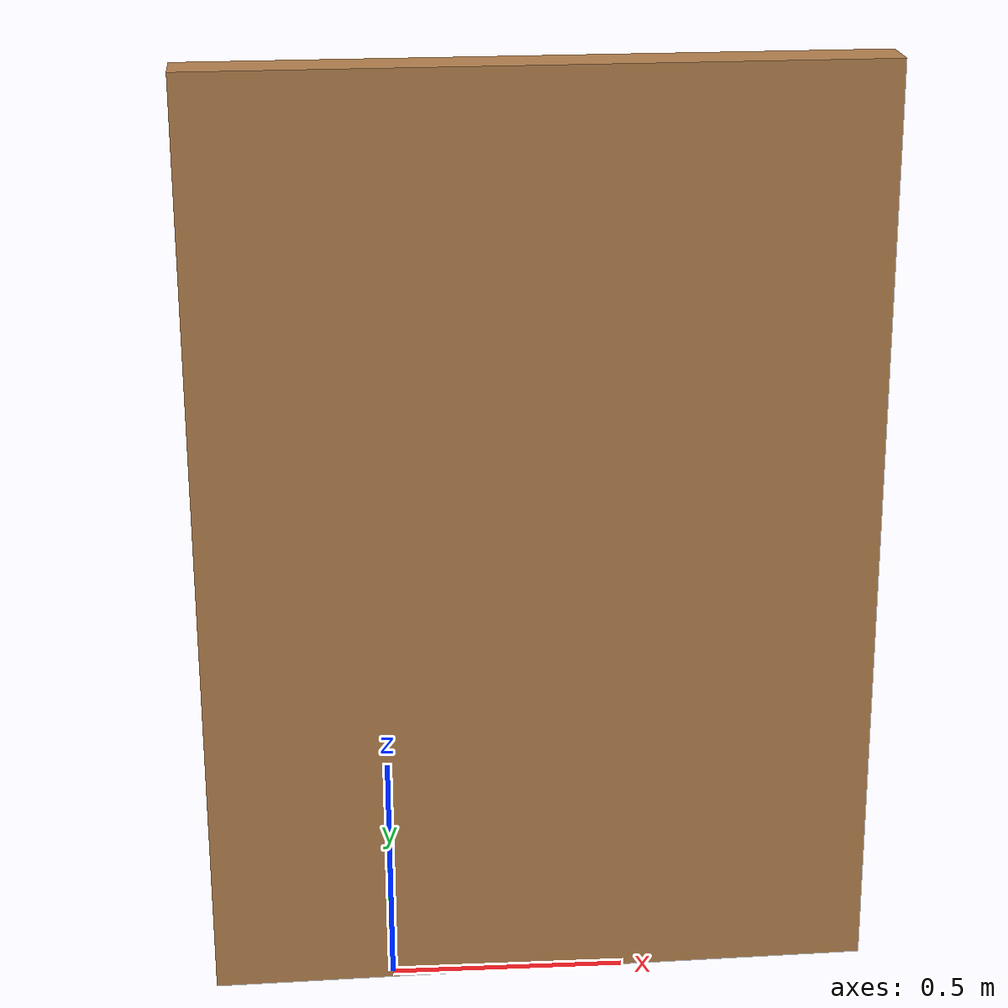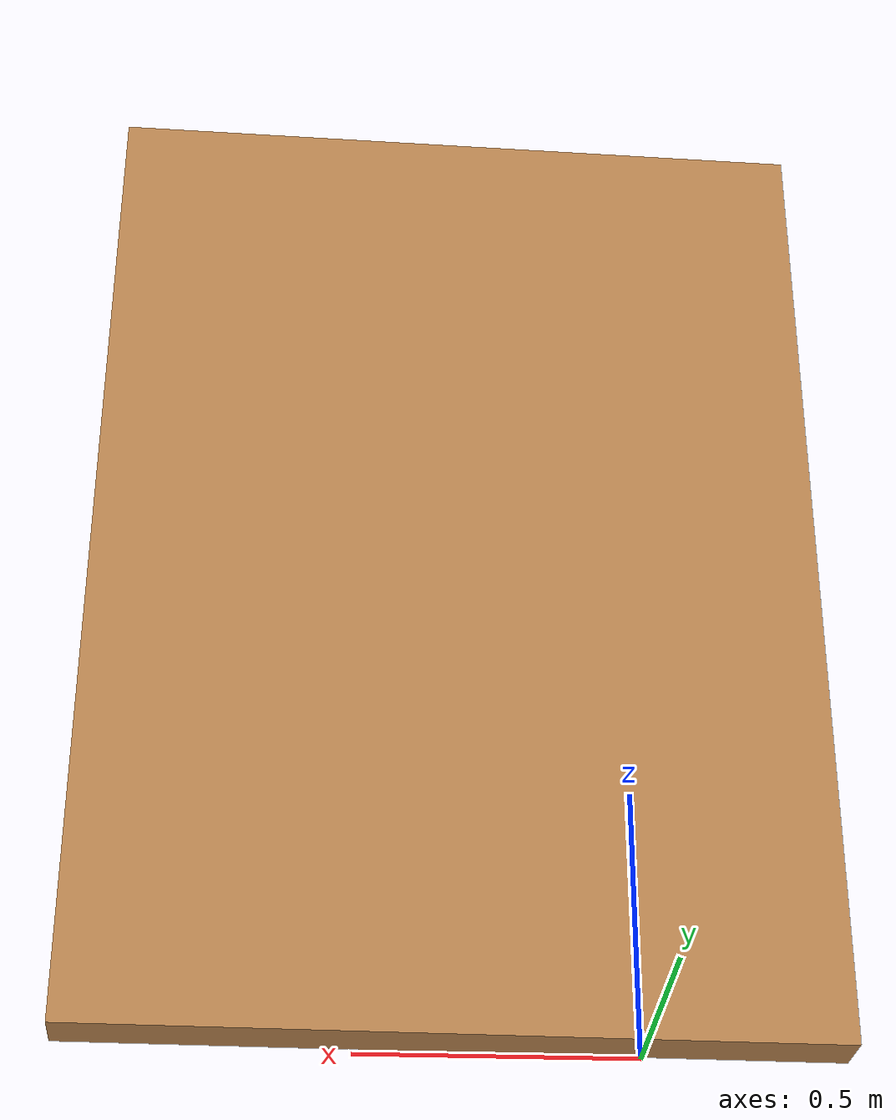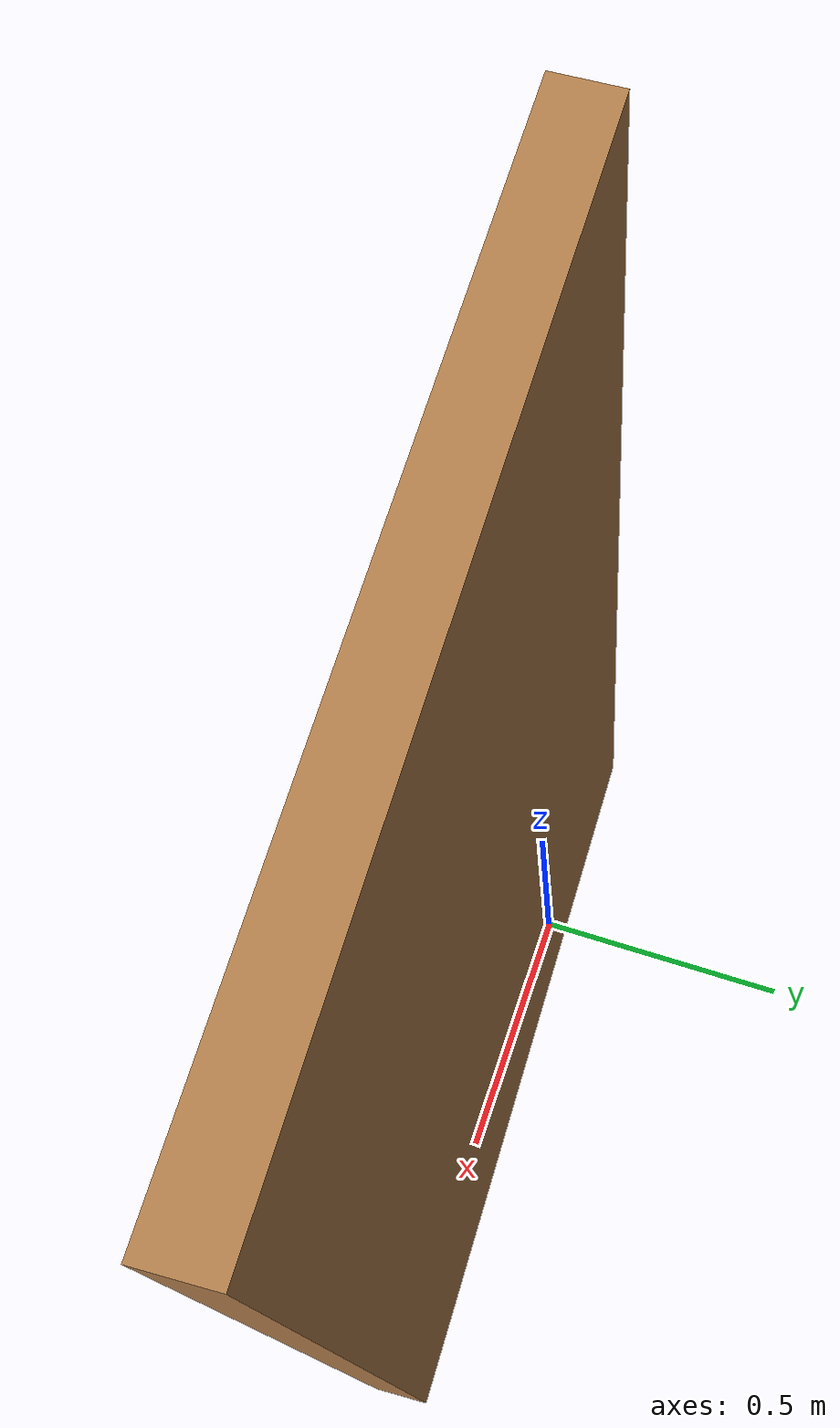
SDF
<?xml version='1.0'?>
<sdf version='1.6'>
  <model name='basic_ply_door_corrected_wider'>
    <link name='link'>
      <pose frame=''>0.319611 -0 1.00385 0 -0 0.034884</pose>
      <inertial>
        <mass>0.5167</mass>
        <inertia>
          <ixx>0.00086117</ixx>
          <ixy>0</ixy>
          <ixz>0</ixz>
          <iyy>0.00086117</iyy>
          <iyz>0</iyz>
          <izz>0.00086117</izz>
        </inertia>
        <pose frame=''>0 0 0 0 -0 0</pose>
      </inertial>
      <self_collide>0</self_collide>
      <enable_wind>0</enable_wind>
      <kinematic>0</kinematic>
      <gravity>1</gravity>
      <visual name='visual'>
        <geometry>
          <box>
            <size>1.4 0.1 1.96</size>
          </box>
        </geometry>
        <material>
          <script>
            <uri>file://media/materials/scripts/gazebo.material</uri>
            <name>Gazebo/Wood</name>
          </script>
          <shader type='pixel'>
            <normal_map>__default__</normal_map>
          </shader>
          <ambient>1 1 1 1</ambient>
          <diffuse>1 1 1 1</diffuse>
          <specular>0.2 0.2 0.2 1</specular>
          <emissive>0 0 0 1</emissive>
        </material>
        <pose frame=''>0 0 0 0 -0 0</pose>
        <transparency>0</transparency>
        <cast_shadows>1</cast_shadows>
      </visual>
      <collision name='collision'>
        <laser_retro>0</laser_retro>
        <max_contacts>10</max_contacts>
        <pose frame=''>0 0 0 0 -0 0</pose>
        <geometry>
          <box>
            <size>0.88 0.1 1.96</size>
          </box>
        </geometry>
        <surface>
          <friction>
            <ode>
              <mu>1</mu>
              <mu2>1</mu2>
              <fdir1>0 0 0</fdir1>
              <slip1>0</slip1>
              <slip2>0</slip2>
            </ode>
            <torsional>
              <coefficient>1</coefficient>
              <patch_radius>0</patch_radius>
              <surface_radius>0.01</surface_radius>
              <use_patch_radius>0</use_patch_radius>
              <ode>
                <slip>0</slip>
              </ode>
            </torsional>
          </friction>
          <bounce>
            <restitution_coefficient>0</restitution_coefficient>
            <threshold>1e+06</threshold>
          </bounce>
          <contact>
            <collide_without_contact>0</collide_without_contact>
            <collide_without_contact_bitmask>1</collide_without_contact_bitmask>
            <collide_bitmask>1</collide_bitmask>
            <ode>
              <soft_cfm>0</soft_cfm>
              <soft_erp>0.2</soft_erp>
              <kp>100000</kp>
              <kd>100</kd>
              <max_vel>100</max_vel>
              <min_depth>0.001</min_depth>
            </ode>
            <bullet>
              <split_impulse>1</split_impulse>
              <split_impulse_penetration_threshold>-0.01</split_impulse_penetration_threshold>
              <soft_cfm>0</soft_cfm>
              <soft_erp>0.2</soft_erp>
              <kp>100000</kp>
              <kd>100</kd>
            </bullet>
          </contact>
        </surface>
      </collision>
    </link>
    <static>1</static>
    <allow_auto_disable>1</allow_auto_disable>
  </model>
</sdf>
